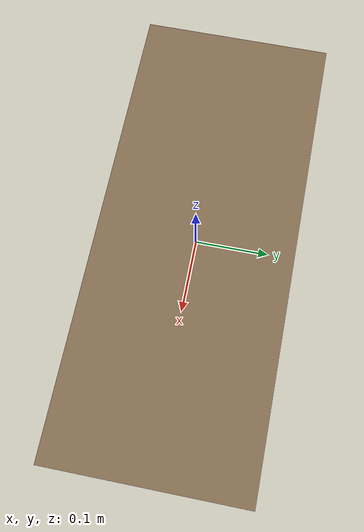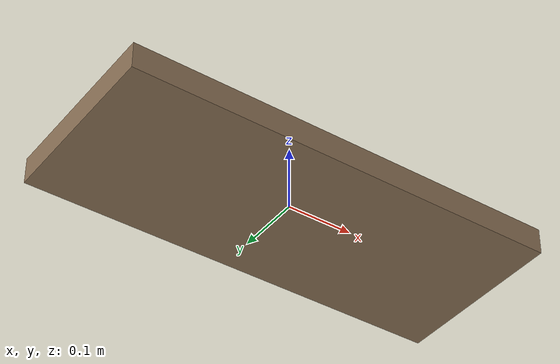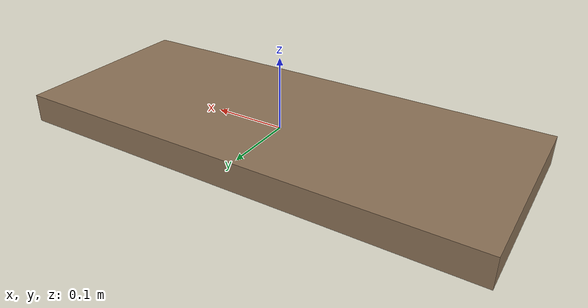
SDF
<?xml version="1.0"?>
<sdf version="1.9">
  <model name="pickup_zone">
    <static>true</static>
    <link name="pickup_zone_link">
      <visual name="table_visual">
        <geometry>
          <box>
            <size>0.65 0.27 0.04</size>
          </box>
        </geometry>
        <material>
          <ambient>0.55 0.45 0.34 1.0</ambient>
          <diffuse>0.55 0.45 0.34 1.0</diffuse>
        </material>
      </visual>
      <collision name="table_collision">
        <geometry>
          <box>
            <size>0.65 0.27 0.04</size>
          </box>
        </geometry>
      </collision>
    </link>
  </model>
</sdf>
